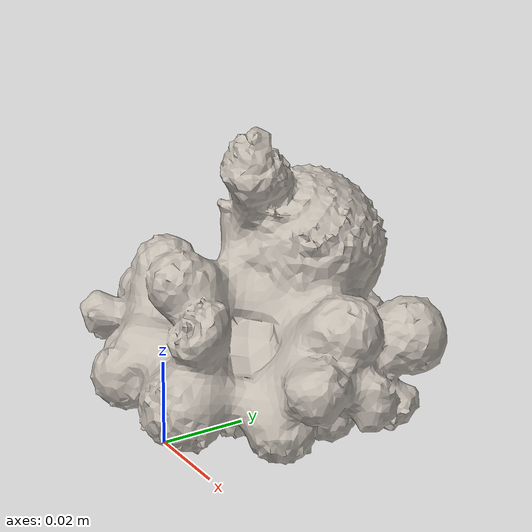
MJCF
<mujoco model="marbles_a">
  <compiler angle="radian" meshdir="assets" texturedir="assets"/>
    <default>
        <default class="ycb_col">
            <geom contype="1" conaffinity="1" group="3" rgba=".4 .5 .6 1"/>
        </default>
        <default class="ycb_viz">
            <geom contype="0" conaffinity="0" type="mesh" mass="0"/>
        </default>
    </default>
  <asset>
    <texture type="2d" name="a_marbles_tex" file="texture_map.png"/>
    <material name="a_marbles_mat" texture="a_marbles_tex" specular="0.5" shininess="0.5"/>
    <mesh file="textured.obj" name="a_marbles"/>
    <mesh file="textured_collision_0.obj" name="a_marbles_collision_0"/>
    <mesh file="textured_collision_1.obj" name="a_marbles_collision_1"/>
    <mesh file="textured_collision_2.obj" name="a_marbles_collision_2"/>
    <mesh file="textured_collision_3.obj" name="a_marbles_collision_3"/>
    <mesh file="textured_collision_4.obj" name="a_marbles_collision_4"/>
    <mesh file="textured_collision_5.obj" name="a_marbles_collision_5"/>
    <mesh file="textured_collision_6.obj" name="a_marbles_collision_6"/>
    <mesh file="textured_collision_7.obj" name="a_marbles_collision_7"/>
    <mesh file="textured_collision_8.obj" name="a_marbles_collision_8"/>
    <mesh file="textured_collision_9.obj" name="a_marbles_collision_9"/>
    <mesh file="textured_collision_10.obj" name="a_marbles_collision_10"/>
    <mesh file="textured_collision_11.obj" name="a_marbles_collision_11"/>
    <mesh file="textured_collision_12.obj" name="a_marbles_collision_12"/>
    <mesh file="textured_collision_13.obj" name="a_marbles_collision_13"/>
    <mesh file="textured_collision_14.obj" name="a_marbles_collision_14"/>
    <mesh file="textured_collision_15.obj" name="a_marbles_collision_15"/>
    <mesh file="textured_collision_16.obj" name="a_marbles_collision_16"/>
    <mesh file="textured_collision_17.obj" name="a_marbles_collision_17"/>
    <mesh file="textured_collision_18.obj" name="a_marbles_collision_18"/>
    <mesh file="textured_collision_19.obj" name="a_marbles_collision_19"/>
    <mesh file="textured_collision_20.obj" name="a_marbles_collision_20"/>
    <mesh file="textured_collision_21.obj" name="a_marbles_collision_21"/>
    <mesh file="textured_collision_22.obj" name="a_marbles_collision_22"/>
    <mesh file="textured_collision_23.obj" name="a_marbles_collision_23"/>
    <mesh file="textured_collision_24.obj" name="a_marbles_collision_24"/>
    <mesh file="textured_collision_25.obj" name="a_marbles_collision_25"/>
    <mesh file="textured_collision_26.obj" name="a_marbles_collision_26"/>
    <mesh file="textured_collision_27.obj" name="a_marbles_collision_27"/>
    <mesh file="textured_collision_28.obj" name="a_marbles_collision_28"/>
    <mesh file="textured_collision_29.obj" name="a_marbles_collision_29"/>
    <mesh file="textured_collision_30.obj" name="a_marbles_collision_30"/>
    <mesh file="textured_collision_31.obj" name="a_marbles_collision_31"/>
    <mesh file="textured_collision_32.obj" name="a_marbles_collision_32"/>
  </asset>
  <worldbody>
      <geom material="a_marbles_mat" mesh="a_marbles" class="ycb_viz"/>
      <geom mesh="a_marbles_collision_0" class="ycb_col" conaffinity="1" condim="4" friction="0.1 0.1 0.1" mass="0.0006619155977571722" rgba="1 1 1 1" solimp="0.99 0.99 0.01" solref=".001 0.1" type="mesh" group="3"/>
      <geom mesh="a_marbles_collision_1" class="ycb_col" conaffinity="1" condim="4" friction="0.1 0.1 0.1" mass="0.0006963658093673285" rgba="1 1 1 1" solimp="0.99 0.99 0.01" solref=".001 0.1" type="mesh" group="3"/>
      <geom mesh="a_marbles_collision_2" class="ycb_col" conaffinity="1" condim="4" friction="0.1 0.1 0.1" mass="0.0011166006829577558" rgba="1 1 1 1" solimp="0.99 0.99 0.01" solref=".001 0.1" type="mesh" group="3"/>
      <geom mesh="a_marbles_collision_3" class="ycb_col" conaffinity="1" condim="4" friction="0.1 0.1 0.1" mass="0.0007517572244638644" rgba="1 1 1 1" solimp="0.99 0.99 0.01" solref=".001 0.1" type="mesh" group="3"/>
      <geom mesh="a_marbles_collision_4" class="ycb_col" conaffinity="1" condim="4" friction="0.1 0.1 0.1" mass="0.0027683818115628494" rgba="1 1 1 1" solimp="0.99 0.99 0.01" solref=".001 0.1" type="mesh" group="3"/>
      <geom mesh="a_marbles_collision_5" class="ycb_col" conaffinity="1" condim="4" friction="0.1 0.1 0.1" mass="0.0020786039837480965" rgba="1 1 1 1" solimp="0.99 0.99 0.01" solref=".001 0.1" type="mesh" group="3"/>
      <geom mesh="a_marbles_collision_6" class="ycb_col" conaffinity="1" condim="4" friction="0.1 0.1 0.1" mass="0.0003294070021300107" rgba="1 1 1 1" solimp="0.99 0.99 0.01" solref=".001 0.1" type="mesh" group="3"/>
      <geom mesh="a_marbles_collision_7" class="ycb_col" conaffinity="1" condim="4" friction="0.1 0.1 0.1" mass="0.0010153332712954286" rgba="1 1 1 1" solimp="0.99 0.99 0.01" solref=".001 0.1" type="mesh" group="3"/>
      <geom mesh="a_marbles_collision_8" class="ycb_col" conaffinity="1" condim="4" friction="0.1 0.1 0.1" mass="0.004416133867661844" rgba="1 1 1 1" solimp="0.99 0.99 0.01" solref=".001 0.1" type="mesh" group="3"/>
      <geom mesh="a_marbles_collision_9" class="ycb_col" conaffinity="1" condim="4" friction="0.1 0.1 0.1" mass="0.0021117260193659728" rgba="1 1 1 1" solimp="0.99 0.99 0.01" solref=".001 0.1" type="mesh" group="3"/>
      <geom mesh="a_marbles_collision_10" class="ycb_col" conaffinity="1" condim="4" friction="0.1 0.1 0.1" mass="0.0012018469121619026" rgba="1 1 1 1" solimp="0.99 0.99 0.01" solref=".001 0.1" type="mesh" group="3"/>
      <geom mesh="a_marbles_collision_11" class="ycb_col" conaffinity="1" condim="4" friction="0.1 0.1 0.1" mass="0.0004998269490215278" rgba="1 1 1 1" solimp="0.99 0.99 0.01" solref=".001 0.1" type="mesh" group="3"/>
      <geom mesh="a_marbles_collision_12" class="ycb_col" conaffinity="1" condim="4" friction="0.1 0.1 0.1" mass="0.0026272983493819814" rgba="1 1 1 1" solimp="0.99 0.99 0.01" solref=".001 0.1" type="mesh" group="3"/>
      <geom mesh="a_marbles_collision_13" class="ycb_col" conaffinity="1" condim="4" friction="0.1 0.1 0.1" mass="0.0010240372975536599" rgba="1 1 1 1" solimp="0.99 0.99 0.01" solref=".001 0.1" type="mesh" group="3"/>
      <geom mesh="a_marbles_collision_14" class="ycb_col" conaffinity="1" condim="4" friction="0.1 0.1 0.1" mass="0.001675443676737074" rgba="1 1 1 1" solimp="0.99 0.99 0.01" solref=".001 0.1" type="mesh" group="3"/>
      <geom mesh="a_marbles_collision_15" class="ycb_col" conaffinity="1" condim="4" friction="0.1 0.1 0.1" mass="0.0004155738932556859" rgba="1 1 1 1" solimp="0.99 0.99 0.01" solref=".001 0.1" type="mesh" group="3"/>
      <geom mesh="a_marbles_collision_16" class="ycb_col" conaffinity="1" condim="4" friction="0.1 0.1 0.1" mass="0.0015443401189288025" rgba="1 1 1 1" solimp="0.99 0.99 0.01" solref=".001 0.1" type="mesh" group="3"/>
      <geom mesh="a_marbles_collision_17" class="ycb_col" conaffinity="1" condim="4" friction="0.1 0.1 0.1" mass="0.0006365129109957492" rgba="1 1 1 1" solimp="0.99 0.99 0.01" solref=".001 0.1" type="mesh" group="3"/>
      <geom mesh="a_marbles_collision_18" class="ycb_col" conaffinity="1" condim="4" friction="0.1 0.1 0.1" mass="0.000750947611373677" rgba="1 1 1 1" solimp="0.99 0.99 0.01" solref=".001 0.1" type="mesh" group="3"/>
      <geom mesh="a_marbles_collision_19" class="ycb_col" conaffinity="1" condim="4" friction="0.1 0.1 0.1" mass="0.003021147918059079" rgba="1 1 1 1" solimp="0.99 0.99 0.01" solref=".001 0.1" type="mesh" group="3"/>
      <geom mesh="a_marbles_collision_20" class="ycb_col" conaffinity="1" condim="4" friction="0.1 0.1 0.1" mass="0.0021294878951256457" rgba="1 1 1 1" solimp="0.99 0.99 0.01" solref=".001 0.1" type="mesh" group="3"/>
      <geom mesh="a_marbles_collision_21" class="ycb_col" conaffinity="1" condim="4" friction="0.1 0.1 0.1" mass="0.000909020006942217" rgba="1 1 1 1" solimp="0.99 0.99 0.01" solref=".001 0.1" type="mesh" group="3"/>
      <geom mesh="a_marbles_collision_22" class="ycb_col" conaffinity="1" condim="4" friction="0.1 0.1 0.1" mass="0.0002775027382394393" rgba="1 1 1 1" solimp="0.99 0.99 0.01" solref=".001 0.1" type="mesh" group="3"/>
      <geom mesh="a_marbles_collision_23" class="ycb_col" conaffinity="1" condim="4" friction="0.1 0.1 0.1" mass="0.0002492599416145482" rgba="1 1 1 1" solimp="0.99 0.99 0.01" solref=".001 0.1" type="mesh" group="3"/>
      <geom mesh="a_marbles_collision_24" class="ycb_col" conaffinity="1" condim="4" friction="0.1 0.1 0.1" mass="9.436083803555437e-05" rgba="1 1 1 1" solimp="0.99 0.99 0.01" solref=".001 0.1" type="mesh" group="3"/>
      <geom mesh="a_marbles_collision_25" class="ycb_col" conaffinity="1" condim="4" friction="0.1 0.1 0.1" mass="0.0031047161072791565" rgba="1 1 1 1" solimp="0.99 0.99 0.01" solref=".001 0.1" type="mesh" group="3"/>
      <geom mesh="a_marbles_collision_26" class="ycb_col" conaffinity="1" condim="4" friction="0.1 0.1 0.1" mass="0.0007829934882277342" rgba="1 1 1 1" solimp="0.99 0.99 0.01" solref=".001 0.1" type="mesh" group="3"/>
      <geom mesh="a_marbles_collision_27" class="ycb_col" conaffinity="1" condim="4" friction="0.1 0.1 0.1" mass="0.0023643064844927684" rgba="1 1 1 1" solimp="0.99 0.99 0.01" solref=".001 0.1" type="mesh" group="3"/>
      <geom mesh="a_marbles_collision_28" class="ycb_col" conaffinity="1" condim="4" friction="0.1 0.1 0.1" mass="0.004636751931048817" rgba="1 1 1 1" solimp="0.99 0.99 0.01" solref=".001 0.1" type="mesh" group="3"/>
      <geom mesh="a_marbles_collision_29" class="ycb_col" conaffinity="1" condim="4" friction="0.1 0.1 0.1" mass="0.003128471023930969" rgba="1 1 1 1" solimp="0.99 0.99 0.01" solref=".001 0.1" type="mesh" group="3"/>
      <geom mesh="a_marbles_collision_30" class="ycb_col" conaffinity="1" condim="4" friction="0.1 0.1 0.1" mass="0.0011696111029085687" rgba="1 1 1 1" solimp="0.99 0.99 0.01" solref=".001 0.1" type="mesh" group="3"/>
      <geom mesh="a_marbles_collision_31" class="ycb_col" conaffinity="1" condim="4" friction="0.1 0.1 0.1" mass="0.001256882851805712" rgba="1 1 1 1" solimp="0.99 0.99 0.01" solref=".001 0.1" type="mesh" group="3"/>
      <geom mesh="a_marbles_collision_32" class="ycb_col" conaffinity="1" condim="4" friction="0.1 0.1 0.1" mass="0.0005534346825694178" rgba="1 1 1 1" solimp="0.99 0.99 0.01" solref=".001 0.1" type="mesh" group="3"/>
  </worldbody>
</mujoco>
